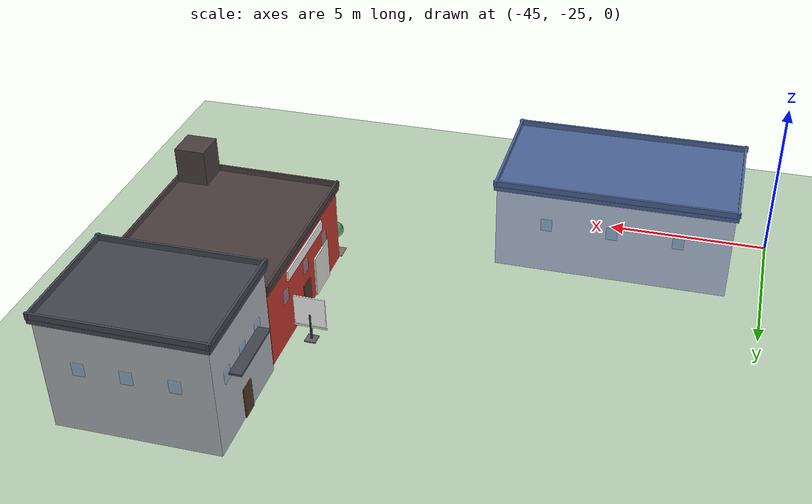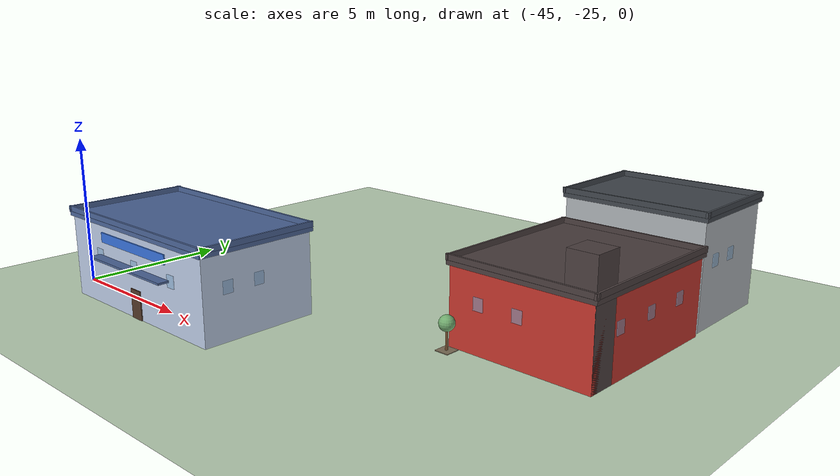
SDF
<sdf version="1.10">
 <world name="city">
  <model name="docking_station">
   <static>true</static>
   <pose>-40.3145965576172 -24 0 0 0 0</pose>
   <link name="link">
    <collision name="body_col">
     <pose>0 0 1.36 0 0 0</pose>
     <geometry><box><size>7.2 4 2.72</size></box></geometry>
    </collision>
    <visual name="body_vis">
     <pose>0 0 1.36 0 0 0</pose>
     <geometry><box><size>7.2 4 2.72</size></box></geometry>
     <material>
      <ambient>0.74000001 0.800000012 0.899999976 1</ambient>
      <diffuse>0.74000001 0.800000012 0.899999976 1</diffuse>
      <specular>0.0799999982 0.0799999982 0.0799999982 1</specular>
     </material>
    </visual>
    <collision name="roof_col">
     <pose>0 0 2.79 0 0 0</pose>
     <geometry><box><size>7.36 4.16 0.14</size></box></geometry>
    </collision>
    <visual name="roof_vis">
     <pose>0 0 2.79 0 0 0</pose>
     <geometry><box><size>7.36 4.16 0.14</size></box></geometry>
     <material>
      <ambient>0.300000012 0.400000006 0.600000024 1</ambient>
      <diffuse>0.300000012 0.400000006 0.600000024 1</diffuse>
      <specular>0.0799999982 0.0799999982 0.0799999982 1</specular>
     </material>
    </visual>
    <visual name="p1_vis">
     <pose>0 2.036 2.948 0 0 0</pose>
     <geometry><box><size>7.42 0.072 0.18</size></box></geometry>
     <material>
      <ambient>0.300000012 0.400000006 0.600000024 1</ambient>
      <diffuse>0.300000012 0.400000006 0.600000024 1</diffuse>
      <specular>0.0799999982 0.0799999982 0.0799999982 1</specular>
     </material>
    </visual>
    <visual name="p2_vis">
     <pose>0 -2.036 2.948 0 0 0</pose>
     <geometry><box><size>7.42 0.072 0.18</size></box></geometry>
     <material>
      <ambient>0.300000012 0.400000006 0.600000024 1</ambient>
      <diffuse>0.300000012 0.400000006 0.600000024 1</diffuse>
      <specular>0.0799999982 0.0799999982 0.0799999982 1</specular>
     </material>
    </visual>
    <visual name="p3_vis">
     <pose>3.636 0 2.948 0 0 0</pose>
     <geometry><box><size>0.072 4.22 0.18</size></box></geometry>
     <material>
      <ambient>0.300000012 0.400000006 0.600000024 1</ambient>
      <diffuse>0.300000012 0.400000006 0.600000024 1</diffuse>
      <specular>0.0799999982 0.0799999982 0.0799999982 1</specular>
     </material>
    </visual>
    <visual name="p4_vis">
     <pose>-3.636 0 2.948 0 0 0</pose>
     <geometry><box><size>0.072 4.22 0.18</size></box></geometry>
     <material>
      <ambient>0.300000012 0.400000006 0.600000024 1</ambient>
      <diffuse>0.300000012 0.400000006 0.600000024 1</diffuse>
      <specular>0.0799999982 0.0799999982 0.0799999982 1</specular>
     </material>
    </visual>
    <visual name="door_vis">
     <pose>0 -2.016 0.48 0 0 0</pose>
     <geometry><box><size>0.52 0.04 0.96</size></box></geometry>
     <material>
      <ambient>0.319999993 0.219999999 0.159999996 1</ambient>
      <diffuse>0.319999993 0.219999999 0.159999996 1</diffuse>
      <specular>0.0799999982 0.0799999982 0.0799999982 1</specular>
     </material>
    </visual>
    <visual name="win_south_0">
     <pose>-2.016 -2.012 1.6864 0 0 0</pose>
     <geometry><box><size>0.34 0.032 0.4</size></box></geometry>
     <material>
      <ambient>0.550000012 0.720000029 0.879999995 0.550000012</ambient>
      <diffuse>0.550000012 0.720000029 0.879999995 0.550000012</diffuse>
      <specular>0.0799999982 0.0799999982 0.0799999982 1</specular>
      <transparency>0.35</transparency>
     </material>
    </visual>
    <visual name="win_south_1">
     <pose>0 -2.012 1.6864 0 0 0</pose>
     <geometry><box><size>0.34 0.032 0.4</size></box></geometry>
     <material>
      <ambient>0.550000012 0.720000029 0.879999995 0.550000012</ambient>
      <diffuse>0.550000012 0.720000029 0.879999995 0.550000012</diffuse>
      <specular>0.0799999982 0.0799999982 0.0799999982 1</specular>
      <transparency>0.35</transparency>
     </material>
    </visual>
    <visual name="win_south_2">
     <pose>2.016 -2.012 1.6864 0 0 0</pose>
     <geometry><box><size>0.34 0.032 0.4</size></box></geometry>
     <material>
      <ambient>0.550000012 0.720000029 0.879999995 0.550000012</ambient>
      <diffuse>0.550000012 0.720000029 0.879999995 0.550000012</diffuse>
      <specular>0.0799999982 0.0799999982 0.0799999982 1</specular>
      <transparency>0.35</transparency>
     </material>
    </visual>
    <visual name="win_west_0">
     <pose>-3.612 -1.12 1.6864 0 0 0</pose>
     <geometry><box><size>0.032 0.34 0.4</size></box></geometry>
     <material>
      <ambient>0.550000012 0.720000029 0.879999995 0.550000012</ambient>
      <diffuse>0.550000012 0.720000029 0.879999995 0.550000012</diffuse>
      <specular>0.0799999982 0.0799999982 0.0799999982 1</specular>
      <transparency>0.35</transparency>
     </material>
    </visual>
    <visual name="win_west_1">
     <pose>-3.612 0 1.6864 0 0 0</pose>
     <geometry><box><size>0.032 0.34 0.4</size></box></geometry>
     <material>
      <ambient>0.550000012 0.720000029 0.879999995 0.550000012</ambient>
      <diffuse>0.550000012 0.720000029 0.879999995 0.550000012</diffuse>
      <specular>0.0799999982 0.0799999982 0.0799999982 1</specular>
      <transparency>0.35</transparency>
     </material>
    </visual>
    <visual name="win_east_0">
     <pose>3.612 -1.12 1.6864 0 0 0</pose>
     <geometry><box><size>0.032 0.34 0.4</size></box></geometry>
     <material>
      <ambient>0.550000012 0.720000029 0.879999995 0.550000012</ambient>
      <diffuse>0.550000012 0.720000029 0.879999995 0.550000012</diffuse>
      <specular>0.0799999982 0.0799999982 0.0799999982 1</specular>
      <transparency>0.35</transparency>
     </material>
    </visual>
    <visual name="win_east_1">
     <pose>3.612 0 1.6864 0 0 0</pose>
     <geometry><box><size>0.032 0.34 0.4</size></box></geometry>
     <material>
      <ambient>0.550000012 0.720000029 0.879999995 0.550000012</ambient>
      <diffuse>0.550000012 0.720000029 0.879999995 0.550000012</diffuse>
      <specular>0.0799999982 0.0799999982 0.0799999982 1</specular>
      <transparency>0.35</transparency>
     </material>
    </visual>
    <visual name="win_north_0">
     <pose>-2.016 2.012 1.6864 0 0 0</pose>
     <geometry><box><size>0.34 0.032 0.4</size></box></geometry>
     <material>
      <ambient>0.550000012 0.720000029 0.879999995 0.550000012</ambient>
      <diffuse>0.550000012 0.720000029 0.879999995 0.550000012</diffuse>
      <specular>0.0799999982 0.0799999982 0.0799999982 1</specular>
      <transparency>0.35</transparency>
     </material>
    </visual>
    <visual name="win_north_1">
     <pose>0 2.012 1.6864 0 0 0</pose>
     <geometry><box><size>0.34 0.032 0.4</size></box></geometry>
     <material>
      <ambient>0.550000012 0.720000029 0.879999995 0.550000012</ambient>
      <diffuse>0.550000012 0.720000029 0.879999995 0.550000012</diffuse>
      <specular>0.0799999982 0.0799999982 0.0799999982 1</specular>
      <transparency>0.35</transparency>
     </material>
    </visual>
    <visual name="win_north_2">
     <pose>2.016 2.012 1.6864 0 0 0</pose>
     <geometry><box><size>0.34 0.032 0.4</size></box></geometry>
     <material>
      <ambient>0.550000012 0.720000029 0.879999995 0.550000012</ambient>
      <diffuse>0.550000012 0.720000029 0.879999995 0.550000012</diffuse>
      <specular>0.0799999982 0.0799999982 0.0799999982 1</specular>
      <transparency>0.35</transparency>
     </material>
    </visual>
    <visual name="awning">
     <pose>0 -2.22 1.6864 0 0 0</pose>
     <geometry><box><size>3.96 0.36 0.064</size></box></geometry>
     <material>
      <ambient>0.300000012 0.400000006 0.600000024 1</ambient>
      <diffuse>0.300000012 0.400000006 0.600000024 1</diffuse>
      <specular>0.0799999982 0.0799999982 0.0799999982 1</specular>
     </material>
    </visual>
    <visual name="sign_vis">
     <pose>0 -2.028 2.312 0 0 0</pose>
     <geometry><box><size>3.6 0.048 0.32</size></box></geometry>
     <material>
      <ambient>0.219999999 0.449999988 0.860000014 1</ambient>
      <diffuse>0.219999999 0.449999988 0.860000014 1</diffuse>
      <specular>0.0799999982 0.0799999982 0.0799999982 1</specular>
     </material>
    </visual>
    <inertial>
     <mass>1</mass>
     <inertia><ixx>1</ixx><ixy>0</ixy><ixz>0</ixz><iyy>1</iyy><iyz>0</iyz><izz>1</izz></inertia>
    </inertial>
   </link>
  </model>
  <model name="fire_station">
   <static>true</static>
   <pose>-29.3855163574219 -18.2624008178711 0 0 0 -1.58175001056651</pose>
   <link name="link">
    <collision name="body_col">
     <pose>0 0 1.24 0 0 0</pose>
     <geometry><box><size>5.6 4.8 2.48</size></box></geometry>
    </collision>
    <visual name="body_vis">
     <pose>0 0 1.24 0 0 0</pose>
     <geometry><box><size>5.6 4.8 2.48</size></box></geometry>
     <material>
      <ambient>0.779999971 0.219999999 0.180000007 1</ambient>
      <diffuse>0.779999971 0.219999999 0.180000007 1</diffuse>
      <specular>0.0799999982 0.0799999982 0.0799999982 1</specular>
     </material>
    </visual>
    <collision name="roof_col">
     <pose>0 0 2.55 0 0 0</pose>
     <geometry><box><size>5.76 4.96 0.14</size></box></geometry>
    </collision>
    <visual name="roof_vis">
     <pose>0 0 2.55 0 0 0</pose>
     <geometry><box><size>5.76 4.96 0.14</size></box></geometry>
     <material>
      <ambient>0.300000012 0.25 0.25 1</ambient>
      <diffuse>0.300000012 0.25 0.25 1</diffuse>
      <specular>0.0799999982 0.0799999982 0.0799999982 1</specular>
     </material>
    </visual>
    <visual name="p1_vis">
     <pose>0 2.436 2.708 0 0 0</pose>
     <geometry><box><size>5.82 0.072 0.18</size></box></geometry>
     <material>
      <ambient>0.300000012 0.25 0.25 1</ambient>
      <diffuse>0.300000012 0.25 0.25 1</diffuse>
      <specular>0.0799999982 0.0799999982 0.0799999982 1</specular>
     </material>
    </visual>
    <visual name="p2_vis">
     <pose>0 -2.436 2.708 0 0 0</pose>
     <geometry><box><size>5.82 0.072 0.18</size></box></geometry>
     <material>
      <ambient>0.300000012 0.25 0.25 1</ambient>
      <diffuse>0.300000012 0.25 0.25 1</diffuse>
      <specular>0.0799999982 0.0799999982 0.0799999982 1</specular>
     </material>
    </visual>
    <visual name="p3_vis">
     <pose>2.836 0 2.708 0 0 0</pose>
     <geometry><box><size>0.072 5.02 0.18</size></box></geometry>
     <material>
      <ambient>0.300000012 0.25 0.25 1</ambient>
      <diffuse>0.300000012 0.25 0.25 1</diffuse>
      <specular>0.0799999982 0.0799999982 0.0799999982 1</specular>
     </material>
    </visual>
    <visual name="p4_vis">
     <pose>-2.836 0 2.708 0 0 0</pose>
     <geometry><box><size>0.072 5.02 0.18</size></box></geometry>
     <material>
      <ambient>0.300000012 0.25 0.25 1</ambient>
      <diffuse>0.300000012 0.25 0.25 1</diffuse>
      <specular>0.0799999982 0.0799999982 0.0799999982 1</specular>
     </material>
    </visual>
    <visual name="door_vis">
     <pose>0 -2.416 0.48 0 0 0</pose>
     <geometry><box><size>0.52 0.04 0.96</size></box></geometry>
     <material>
      <ambient>0.319999993 0.219999999 0.159999996 1</ambient>
      <diffuse>0.319999993 0.219999999 0.159999996 1</diffuse>
      <specular>0.0799999982 0.0799999982 0.0799999982 1</specular>
     </material>
    </visual>
    <visual name="win_south_0">
     <pose>-1.568 -2.412 1.5376 0 0 0</pose>
     <geometry><box><size>0.34 0.032 0.4</size></box></geometry>
     <material>
      <ambient>0.550000012 0.720000029 0.879999995 0.550000012</ambient>
      <diffuse>0.550000012 0.720000029 0.879999995 0.550000012</diffuse>
      <specular>0.0799999982 0.0799999982 0.0799999982 1</specular>
      <transparency>0.35</transparency>
     </material>
    </visual>
    <visual name="win_south_1">
     <pose>0 -2.412 1.5376 0 0 0</pose>
     <geometry><box><size>0.34 0.032 0.4</size></box></geometry>
     <material>
      <ambient>0.550000012 0.720000029 0.879999995 0.550000012</ambient>
      <diffuse>0.550000012 0.720000029 0.879999995 0.550000012</diffuse>
      <specular>0.0799999982 0.0799999982 0.0799999982 1</specular>
      <transparency>0.35</transparency>
     </material>
    </visual>
    <visual name="win_south_2">
     <pose>1.568 -2.412 1.5376 0 0 0</pose>
     <geometry><box><size>0.34 0.032 0.4</size></box></geometry>
     <material>
      <ambient>0.550000012 0.720000029 0.879999995 0.550000012</ambient>
      <diffuse>0.550000012 0.720000029 0.879999995 0.550000012</diffuse>
      <specular>0.0799999982 0.0799999982 0.0799999982 1</specular>
      <transparency>0.35</transparency>
     </material>
    </visual>
    <visual name="win_west_0">
     <pose>-2.812 -1.344 1.5376 0 0 0</pose>
     <geometry><box><size>0.032 0.34 0.4</size></box></geometry>
     <material>
      <ambient>0.550000012 0.720000029 0.879999995 0.550000012</ambient>
      <diffuse>0.550000012 0.720000029 0.879999995 0.550000012</diffuse>
      <specular>0.0799999982 0.0799999982 0.0799999982 1</specular>
      <transparency>0.35</transparency>
     </material>
    </visual>
    <visual name="win_west_1">
     <pose>-2.812 0 1.5376 0 0 0</pose>
     <geometry><box><size>0.032 0.34 0.4</size></box></geometry>
     <material>
      <ambient>0.550000012 0.720000029 0.879999995 0.550000012</ambient>
      <diffuse>0.550000012 0.720000029 0.879999995 0.550000012</diffuse>
      <specular>0.0799999982 0.0799999982 0.0799999982 1</specular>
      <transparency>0.35</transparency>
     </material>
    </visual>
    <visual name="win_east_0">
     <pose>2.812 -1.344 1.5376 0 0 0</pose>
     <geometry><box><size>0.032 0.34 0.4</size></box></geometry>
     <material>
      <ambient>0.550000012 0.720000029 0.879999995 0.550000012</ambient>
      <diffuse>0.550000012 0.720000029 0.879999995 0.550000012</diffuse>
      <specular>0.0799999982 0.0799999982 0.0799999982 1</specular>
      <transparency>0.35</transparency>
     </material>
    </visual>
    <visual name="win_east_1">
     <pose>2.812 0 1.5376 0 0 0</pose>
     <geometry><box><size>0.032 0.34 0.4</size></box></geometry>
     <material>
      <ambient>0.550000012 0.720000029 0.879999995 0.550000012</ambient>
      <diffuse>0.550000012 0.720000029 0.879999995 0.550000012</diffuse>
      <specular>0.0799999982 0.0799999982 0.0799999982 1</specular>
      <transparency>0.35</transparency>
     </material>
    </visual>
    <visual name="win_north_0">
     <pose>-1.568 2.412 1.5376 0 0 0</pose>
     <geometry><box><size>0.34 0.032 0.4</size></box></geometry>
     <material>
      <ambient>0.550000012 0.720000029 0.879999995 0.550000012</ambient>
      <diffuse>0.550000012 0.720000029 0.879999995 0.550000012</diffuse>
      <specular>0.0799999982 0.0799999982 0.0799999982 1</specular>
      <transparency>0.35</transparency>
     </material>
    </visual>
    <visual name="win_north_1">
     <pose>0 2.412 1.5376 0 0 0</pose>
     <geometry><box><size>0.34 0.032 0.4</size></box></geometry>
     <material>
      <ambient>0.550000012 0.720000029 0.879999995 0.550000012</ambient>
      <diffuse>0.550000012 0.720000029 0.879999995 0.550000012</diffuse>
      <specular>0.0799999982 0.0799999982 0.0799999982 1</specular>
      <transparency>0.35</transparency>
     </material>
    </visual>
    <visual name="win_north_2">
     <pose>1.568 2.412 1.5376 0 0 0</pose>
     <geometry><box><size>0.34 0.032 0.4</size></box></geometry>
     <material>
      <ambient>0.550000012 0.720000029 0.879999995 0.550000012</ambient>
      <diffuse>0.550000012 0.720000029 0.879999995 0.550000012</diffuse>
      <specular>0.0799999982 0.0799999982 0.0799999982 1</specular>
      <transparency>0.35</transparency>
     </material>
    </visual>
    <visual name="sign_vis">
     <pose>0 -2.428 2.108 0 0 0</pose>
     <geometry><box><size>2.8 0.048 0.32</size></box></geometry>
     <material>
      <ambient>0.920000017 0.920000017 0.920000017 1</ambient>
      <diffuse>0.920000017 0.920000017 0.920000017 1</diffuse>
      <specular>0.0799999982 0.0799999982 0.0799999982 1</specular>
     </material>
    </visual>
    <visual name="garage">
     <pose>1.232 -2.424 0.66 0 0 0</pose>
     <geometry><box><size>1.12 0.048 1.32</size></box></geometry>
     <material>
      <ambient>0.860000014 0.860000014 0.839999974 1</ambient>
      <diffuse>0.860000014 0.860000014 0.839999974 1</diffuse>
      <specular>0.0799999982 0.0799999982 0.0799999982 1</specular>
     </material>
    </visual>
    <collision name="tower_col">
     <pose>2.32 1.92 1.88 0 0 0</pose>
     <geometry><box><size>0.96 0.96 3.76</size></box></geometry>
    </collision>
    <visual name="tower_vis">
     <pose>2.32 1.92 1.88 0 0 0</pose>
     <geometry><box><size>0.96 0.96 3.76</size></box></geometry>
     <material>
      <ambient>0.300000012 0.25 0.25 1</ambient>
      <diffuse>0.300000012 0.25 0.25 1</diffuse>
      <specular>0.0799999982 0.0799999982 0.0799999982 1</specular>
     </material>
    </visual>
    <inertial>
     <mass>1</mass>
     <inertia><ixx>1</ixx><ixy>0</ixy><ixz>0</ixz><iyy>1</iyy><iyz>0</iyz><izz>1</izz></inertia>
    </inertial>
   </link>
  </model>
  <model name="fire_station_qr_sign">
   <static>true</static>
   <pose>-32.4094604492187 -16.803337097168 0 0 0 3.12119999981607</pose>
   <link name="link">
    <collision name="post_col">
     <pose>0 0 0.46 0 0 0</pose>
     <geometry><box><size>0.056 0.056 0.92</size></box></geometry>
    </collision>
    <visual name="post_vis">
     <pose>0 0 0.46 0 0 0</pose>
     <geometry><box><size>0.056 0.056 0.92</size></box></geometry>
     <material>
      <ambient>0.239999995 0.239999995 0.239999995 1</ambient>
      <diffuse>0.239999995 0.239999995 0.239999995 1</diffuse>
      <specular>0.0799999982 0.0799999982 0.0799999982 1</specular>
     </material>
    </visual>
    <collision name="base_col">
     <pose>0 0 0.024 0 0 0</pose>
     <geometry><box><size>0.34 0.34 0.048</size></box></geometry>
    </collision>
    <visual name="base_vis">
     <pose>0 0 0.024 0 0 0</pose>
     <geometry><box><size>0.34 0.34 0.048</size></box></geometry>
     <material>
      <ambient>0.379999995 0.379999995 0.379999995 1</ambient>
      <diffuse>0.379999995 0.379999995 0.379999995 1</diffuse>
      <specular>0.0799999982 0.0799999982 0.0799999982 1</specular>
     </material>
    </visual>
    <visual name="back_vis">
     <pose>0 0 0.48 0 0 0</pose>
     <geometry><box><size>1.02 0.024 0.06</size></box></geometry>
     <material>
      <ambient>0.920000017 0.920000017 0.920000017 1</ambient>
      <diffuse>0.920000017 0.920000017 0.920000017 1</diffuse>
      <specular>0.0500000007 0.0500000007 0.0500000007 1</specular>
     </material>
    </visual>
    <visual name="qr_vis">
     <pose>0 0 1.02 0 0 0</pose>
     <geometry><box><size>0.96 0.04 0.96</size></box></geometry>
     <material>
      <ambient>1 1 1 1</ambient>
      <diffuse>1 1 1 1</diffuse>
      <specular>0.0500000007 0.0500000007 0.0500000007 1</specular>
      <pbr><metal><metalness>0.0</metalness><roughness>1.0</roughness></metal></pbr>
     </material>
    </visual>
    <inertial>
     <mass>1</mass>
     <inertia><ixx>1</ixx><ixy>0</ixy><ixz>0</ixz><iyy>1</iyy><iyz>0</iyz><izz>1</izz></inertia>
    </inertial>
   </link>
  </model>
  <model name="tree_4_3_1">
   <static>true</static>
   <pose>-31.6494145292108 -21.3260323939449 0 0 0 0</pose>
   <link name="link">
    <collision name="soil_col">
     <pose>0 0 0.012 0 0 0</pose>
     <geometry><box><size>0.48 0.48 0.024</size></box></geometry>
    </collision>
    <visual name="soil_vis">
     <pose>0 0 0.012 0 0 0</pose>
     <geometry><box><size>0.48 0.48 0.024</size></box></geometry>
     <material>
      <ambient>0.5 0.439999998 0.349999994 1</ambient>
      <diffuse>0.5 0.439999998 0.349999994 1</diffuse>
      <specular>0.0799999982 0.0799999982 0.0799999982 1</specular>
     </material>
    </visual>
    <collision name="trunk_col">
     <pose>0 0 0.36 0 0 0</pose>
     <geometry><cylinder><radius>0.04</radius><length>0.72</length></cylinder></geometry>
    </collision>
    <visual name="trunk_vis">
     <pose>0 0 0.36 0 0 0</pose>
     <geometry><cylinder><radius>0.04</radius><length>0.72</length></cylinder></geometry>
     <material>
      <ambient>0.449999988 0.310000002 0.180000007 1</ambient>
      <diffuse>0.449999988 0.310000002 0.180000007 1</diffuse>
      <specular>0.0799999982 0.0799999982 0.0799999982 1</specular>
     </material>
    </visual>
    <visual name="crown_vis">
     <pose>0 0 0.84 0 0 0</pose>
     <geometry><sphere><radius>0.248</radius></sphere></geometry>
     <material>
      <ambient>0.449999988 0.680000007 0.439999998 1</ambient>
      <diffuse>0.449999988 0.680000007 0.439999998 1</diffuse>
      <specular>0.0799999982 0.0799999982 0.0799999982 1</specular>
     </material>
    </visual>
    <inertial>
     <mass>1</mass>
     <inertia><ixx>1</ixx><ixy>0</ixy><ixz>0</ixz><iyy>1</iyy><iyz>0</iyz><izz>1</izz></inertia>
    </inertial>
   </link>
  </model>
  <model name="ground_plane_1">
   <static>true</static>
   <link name="link">
    <collision name="collision">
     <geometry><plane><normal>0 0 1</normal><size>0.4 0.4</size></plane></geometry>
    </collision>
    <visual name="visual">
     <geometry><plane><normal>0 0 1</normal><size>120 104</size></plane></geometry>
     <material>
      <ambient>0.74000001 0.829999983 0.720000029 1</ambient>
      <diffuse>0.74000001 0.829999983 0.720000029 1</diffuse>
      <specular>0.0299999993 0.0299999993 0.0299999993 1</specular>
     </material>
    </visual>
    <inertial>
     <mass>1</mass>
     <inertia><ixx>1</ixx><ixy>0</ixy><ixz>0</ixz><iyy>1</iyy><iyz>0</iyz><izz>1</izz></inertia>
    </inertial>
   </link>
   <pose>-32.2928864213524 -17.0299631510608 0 0 0 0</pose>
  </model>
  <model name="office_east_2_2_1">
   <static>true</static>
   <pose>-29.4407579581 -13.4241200179675 0 0 0 0</pose>
   <link name="link">
    <collision name="body_col">
     <pose>0 0 1.72 0 0 0</pose>
     <geometry><box><size>4.8 3.6 3.44</size></box></geometry>
    </collision>
    <visual name="body_vis">
     <pose>0 0 1.72 0 0 0</pose>
     <geometry><box><size>4.8 3.6 3.44</size></box></geometry>
     <material>
      <ambient>0.689999998 0.709999979 0.730000019 1</ambient>
      <diffuse>0.689999998 0.709999979 0.730000019 1</diffuse>
      <specular>0.0799999982 0.0799999982 0.0799999982 1</specular>
     </material>
    </visual>
    <collision name="roof_col">
     <pose>0 0 3.51 0 0 0</pose>
     <geometry><box><size>4.96 3.76 0.14</size></box></geometry>
    </collision>
    <visual name="roof_vis">
     <pose>0 0 3.51 0 0 0</pose>
     <geometry><box><size>4.96 3.76 0.14</size></box></geometry>
     <material>
      <ambient>0.25999999 0.280000001 0.310000002 1</ambient>
      <diffuse>0.25999999 0.280000001 0.310000002 1</diffuse>
      <specular>0.0799999982 0.0799999982 0.0799999982 1</specular>
     </material>
    </visual>
    <visual name="p1_vis">
     <pose>0 1.836 3.668 0 0 0</pose>
     <geometry><box><size>5.02 0.072 0.18</size></box></geometry>
     <material>
      <ambient>0.25999999 0.280000001 0.310000002 1</ambient>
      <diffuse>0.25999999 0.280000001 0.310000002 1</diffuse>
      <specular>0.0799999982 0.0799999982 0.0799999982 1</specular>
     </material>
    </visual>
    <visual name="p2_vis">
     <pose>0 -1.836 3.668 0 0 0</pose>
     <geometry><box><size>5.02 0.072 0.18</size></box></geometry>
     <material>
      <ambient>0.25999999 0.280000001 0.310000002 1</ambient>
      <diffuse>0.25999999 0.280000001 0.310000002 1</diffuse>
      <specular>0.0799999982 0.0799999982 0.0799999982 1</specular>
     </material>
    </visual>
    <visual name="p3_vis">
     <pose>2.436 0 3.668 0 0 0</pose>
     <geometry><box><size>0.072 3.82 0.18</size></box></geometry>
     <material>
      <ambient>0.25999999 0.280000001 0.310000002 1</ambient>
      <diffuse>0.25999999 0.280000001 0.310000002 1</diffuse>
      <specular>0.0799999982 0.0799999982 0.0799999982 1</specular>
     </material>
    </visual>
    <visual name="p4_vis">
     <pose>-2.436 0 3.668 0 0 0</pose>
     <geometry><box><size>0.072 3.82 0.18</size></box></geometry>
     <material>
      <ambient>0.25999999 0.280000001 0.310000002 1</ambient>
      <diffuse>0.25999999 0.280000001 0.310000002 1</diffuse>
      <specular>0.0799999982 0.0799999982 0.0799999982 1</specular>
     </material>
    </visual>
    <visual name="door_vis">
     <pose>-2.416 0 0.48 0 0 0</pose>
     <geometry><box><size>0.04 0.52 0.96</size></box></geometry>
     <material>
      <ambient>0.319999993 0.219999999 0.159999996 1</ambient>
      <diffuse>0.319999993 0.219999999 0.159999996 1</diffuse>
      <specular>0.0799999982 0.0799999982 0.0799999982 1</specular>
     </material>
    </visual>
    <visual name="win_west_0">
     <pose>-2.412 -1.008 2.1328 0 0 0</pose>
     <geometry><box><size>0.032 0.34 0.4</size></box></geometry>
     <material>
      <ambient>0.550000012 0.720000029 0.879999995 0.550000012</ambient>
      <diffuse>0.550000012 0.720000029 0.879999995 0.550000012</diffuse>
      <specular>0.0799999982 0.0799999982 0.0799999982 1</specular>
      <transparency>0.35</transparency>
     </material>
    </visual>
    <visual name="win_west_1">
     <pose>-2.412 0 2.1328 0 0 0</pose>
     <geometry><box><size>0.032 0.34 0.4</size></box></geometry>
     <material>
      <ambient>0.550000012 0.720000029 0.879999995 0.550000012</ambient>
      <diffuse>0.550000012 0.720000029 0.879999995 0.550000012</diffuse>
      <specular>0.0799999982 0.0799999982 0.0799999982 1</specular>
      <transparency>0.35</transparency>
     </material>
    </visual>
    <visual name="win_west_2">
     <pose>-2.412 1.008 2.1328 0 0 0</pose>
     <geometry><box><size>0.032 0.34 0.4</size></box></geometry>
     <material>
      <ambient>0.550000012 0.720000029 0.879999995 0.550000012</ambient>
      <diffuse>0.550000012 0.720000029 0.879999995 0.550000012</diffuse>
      <specular>0.0799999982 0.0799999982 0.0799999982 1</specular>
      <transparency>0.35</transparency>
     </material>
    </visual>
    <visual name="win_south_0">
     <pose>-1.344 -1.812 2.1328 0 0 0</pose>
     <geometry><box><size>0.34 0.032 0.4</size></box></geometry>
     <material>
      <ambient>0.550000012 0.720000029 0.879999995 0.550000012</ambient>
      <diffuse>0.550000012 0.720000029 0.879999995 0.550000012</diffuse>
      <specular>0.0799999982 0.0799999982 0.0799999982 1</specular>
      <transparency>0.35</transparency>
     </material>
    </visual>
    <visual name="win_south_1">
     <pose>0 -1.812 2.1328 0 0 0</pose>
     <geometry><box><size>0.34 0.032 0.4</size></box></geometry>
     <material>
      <ambient>0.550000012 0.720000029 0.879999995 0.550000012</ambient>
      <diffuse>0.550000012 0.720000029 0.879999995 0.550000012</diffuse>
      <specular>0.0799999982 0.0799999982 0.0799999982 1</specular>
      <transparency>0.35</transparency>
     </material>
    </visual>
    <visual name="win_south_2">
     <pose>1.344 -1.812 2.1328 0 0 0</pose>
     <geometry><box><size>0.34 0.032 0.4</size></box></geometry>
     <material>
      <ambient>0.550000012 0.720000029 0.879999995 0.550000012</ambient>
      <diffuse>0.550000012 0.720000029 0.879999995 0.550000012</diffuse>
      <specular>0.0799999982 0.0799999982 0.0799999982 1</specular>
      <transparency>0.35</transparency>
     </material>
    </visual>
    <visual name="win_east_0">
     <pose>2.412 -1.008 2.1328 0 0 0</pose>
     <geometry><box><size>0.032 0.34 0.4</size></box></geometry>
     <material>
      <ambient>0.550000012 0.720000029 0.879999995 0.550000012</ambient>
      <diffuse>0.550000012 0.720000029 0.879999995 0.550000012</diffuse>
      <specular>0.0799999982 0.0799999982 0.0799999982 1</specular>
      <transparency>0.35</transparency>
     </material>
    </visual>
    <visual name="win_east_1">
     <pose>2.412 0 2.1328 0 0 0</pose>
     <geometry><box><size>0.032 0.34 0.4</size></box></geometry>
     <material>
      <ambient>0.550000012 0.720000029 0.879999995 0.550000012</ambient>
      <diffuse>0.550000012 0.720000029 0.879999995 0.550000012</diffuse>
      <specular>0.0799999982 0.0799999982 0.0799999982 1</specular>
      <transparency>0.35</transparency>
     </material>
    </visual>
    <visual name="win_north_0">
     <pose>-1.344 1.812 2.1328 0 0 0</pose>
     <geometry><box><size>0.34 0.032 0.4</size></box></geometry>
     <material>
      <ambient>0.550000012 0.720000029 0.879999995 0.550000012</ambient>
      <diffuse>0.550000012 0.720000029 0.879999995 0.550000012</diffuse>
      <specular>0.0799999982 0.0799999982 0.0799999982 1</specular>
      <transparency>0.35</transparency>
     </material>
    </visual>
    <visual name="win_north_1">
     <pose>0 1.812 2.1328 0 0 0</pose>
     <geometry><box><size>0.34 0.032 0.4</size></box></geometry>
     <material>
      <ambient>0.550000012 0.720000029 0.879999995 0.550000012</ambient>
      <diffuse>0.550000012 0.720000029 0.879999995 0.550000012</diffuse>
      <specular>0.0799999982 0.0799999982 0.0799999982 1</specular>
      <transparency>0.35</transparency>
     </material>
    </visual>
    <visual name="win_north_2">
     <pose>1.344 1.812 2.1328 0 0 0</pose>
     <geometry><box><size>0.34 0.032 0.4</size></box></geometry>
     <material>
      <ambient>0.550000012 0.720000029 0.879999995 0.550000012</ambient>
      <diffuse>0.550000012 0.720000029 0.879999995 0.550000012</diffuse>
      <specular>0.0799999982 0.0799999982 0.0799999982 1</specular>
      <transparency>0.35</transparency>
     </material>
    </visual>
    <visual name="awning">
     <pose>-2.62 0 2.1328 0 0 0</pose>
     <geometry><box><size>0.36 1.98 0.064</size></box></geometry>
     <material>
      <ambient>0.25999999 0.280000001 0.310000002 1</ambient>
      <diffuse>0.25999999 0.280000001 0.310000002 1</diffuse>
      <specular>0.0799999982 0.0799999982 0.0799999982 1</specular>
     </material>
    </visual>
    <inertial>
     <mass>1</mass>
     <inertia><ixx>1</ixx><ixy>0</ixy><ixz>0</ixz><iyy>1</iyy><iyz>0</iyz><izz>1</izz></inertia>
    </inertial>
   </link>
  </model>
 </world>
</sdf>
